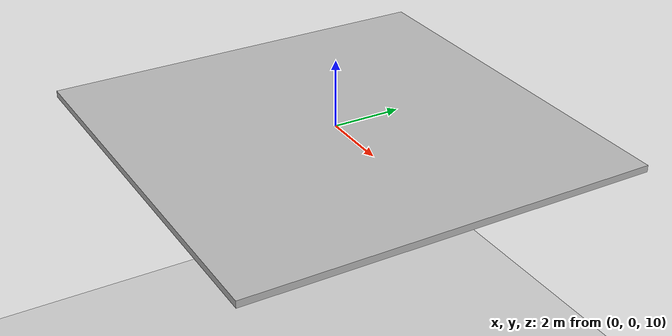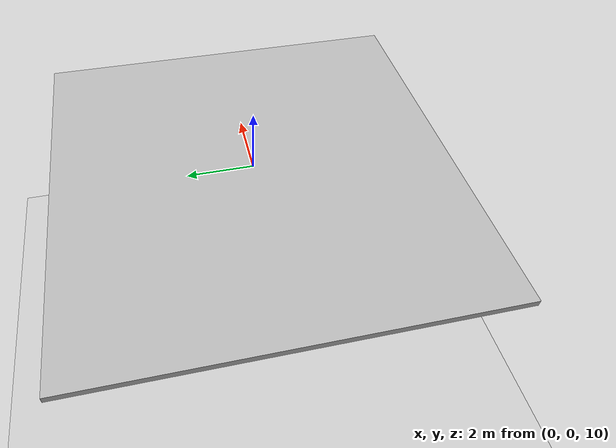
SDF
<?xml version='1.0' encoding='utf-8'?>
<sdf version="1.9">
  <world name="afvl_validation_lowered_10">
    <physics type="ode">
      <max_step_size>0.004</max_step_size>
      <real_time_factor>1.0</real_time_factor>
      <real_time_update_rate>250</real_time_update_rate>
    </physics>
    <gravity>0 0 -9.8</gravity>
    <magnetic_field>6e-06 2.3e-05 -4.2e-05</magnetic_field>
    <atmosphere type="adiabatic" />
    <scene>
      <grid>false</grid>
      <ambient>0.4 0.4 0.4 1</ambient>
      <background>0.7 0.7 0.7 1</background>
      <shadows>true</shadows>
    </scene>
    <model name="ground_plane">
      <static>true</static>
      <link name="link">
        <collision name="collision">
          <geometry>
            <plane>
              <normal>0 0 1</normal>
              <size>1 1</size>
            </plane>
          </geometry>
          <surface>
            <friction>
              <ode />
            </friction>
            <bounce />
            <contact />
          </surface>
        </collision>
        <visual name="visual">
          <geometry>
            <plane>
              <normal>0 0 1</normal>
              <size>500 500</size>
            </plane>
          </geometry>
          <material>
            <ambient>0.8 0.8 0.8 1</ambient>
            <diffuse>0.8 0.8 0.8 1</diffuse>
            <specular>0.8 0.8 0.8 1</specular>
          </material>
        </visual>
        <pose>0 0 0 0 -0 0</pose>
        <inertial>
          <pose>0 0 0 0 -0 0</pose>
          <mass>1</mass>
          <inertia>
            <ixx>1</ixx>
            <ixy>0</ixy>
            <ixz>0</ixz>
            <iyy>1</iyy>
            <iyz>0</iyz>
            <izz>1</izz>
          </inertia>
        </inertial>
        <enable_wind>false</enable_wind>
      </link>
      <pose>0 0 0 0 -0 0</pose>
      <self_collide>false</self_collide>
    </model>
    <light name="sunUTC" type="directional">
      <pose>0 0 500 0 -0 0</pose>
      <cast_shadows>true</cast_shadows>
      <intensity>1</intensity>
      <direction>0.001 0.625 -0.78</direction>
      <diffuse>0.904 0.904 0.904 1</diffuse>
      <specular>0.271 0.271 0.271 1</specular>
      <attenuation>
        <range>2000</range>
        <linear>0</linear>
        <constant>1</constant>
        <quadratic>0</quadratic>
      </attenuation>
      <spot>
        <inner_angle>0</inner_angle>
        <outer_angle>0</outer_angle>
        <falloff>0</falloff>
      </spot>
    </light>
    <spherical_coordinates>
      <surface_model>EARTH_WGS84</surface_model>
      <world_frame_orientation>ENU</world_frame_orientation>
      <latitude_deg>47.397971057728974</latitude_deg>
      <longitude_deg> 8.546163739800146</longitude_deg>
      <elevation>0</elevation>
    </spherical_coordinates>
    <wind>
      <linear_velocity>0 0 0</linear_velocity>
    </wind>
    <plugin filename="gz-sim-physics-system" name="gz::sim::systems::Physics" />
    <plugin filename="gz-sim-user-commands-system" name="gz::sim::systems::UserCommands" />
    <plugin filename="gz-sim-scene-broadcaster-system" name="gz::sim::systems::SceneBroadcaster" />
    <plugin filename="gz-sim-contact-system" name="gz::sim::systems::Contact" />
    <plugin filename="gz-sim-imu-system" name="gz::sim::systems::Imu" />
    <plugin filename="gz-sim-air-pressure-system" name="gz::sim::systems::AirPressure" />
    <plugin filename="gz-sim-air-speed-system" name="gz::sim::systems::AirSpeed" />
    <plugin filename="gz-sim-apply-link-wrench-system" name="gz::sim::systems::ApplyLinkWrench" />
    <plugin filename="gz-sim-navsat-system" name="gz::sim::systems::NavSat" />
    <plugin filename="gz-sim-magnetometer-system" name="gz::sim::systems::Magnetometer" />
    <plugin filename="gz-sim-sensors-system" name="gz::sim::systems::Sensors">
      <render_engine>ogre2</render_engine>
    </plugin>
    <plugin filename="libOpticalFlowSystem.so" name="custom::OpticalFlowSystem" />
    <plugin filename="libGstCameraSystem.so" name="custom::GstCameraSystem" />
    <plugin filename="gz-sim-wind-effects-system" name="gz::sim::systems::WindEffects">
      <force_approximation_scaling_factor>0</force_approximation_scaling_factor>
      <horizontal>
        <magnitude>
          <time_for_rise>0.3</time_for_rise>
        </magnitude>
        <direction>
          <time_for_rise>0.3</time_for_rise>
        </direction>
      </horizontal>
      <vertical>
        <time_for_rise>0.3</time_for_rise>
      </vertical>
    </plugin>
  <model name="afvl_test_surface"><static>true</static><pose>0 0 9.9 0 0 0</pose><link name="pad"><collision name="collision"><geometry><box><size>12 12 0.2</size></box></geometry></collision><visual name="visual"><geometry><box><size>12 12 0.2</size></box></geometry></visual></link></model></world>
</sdf>
